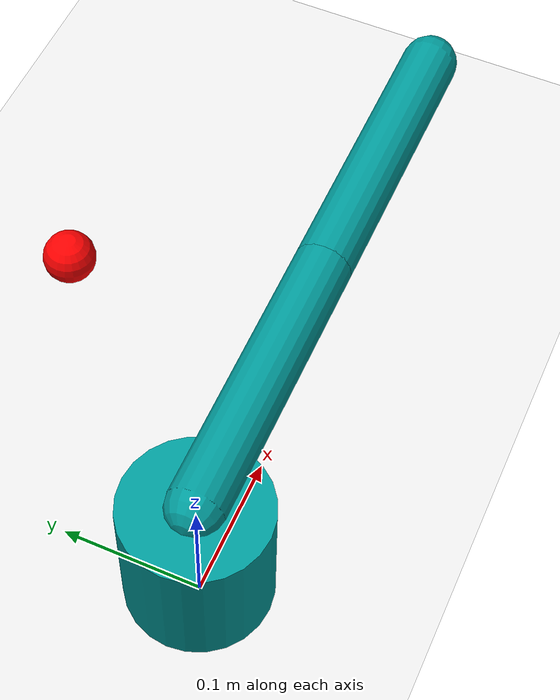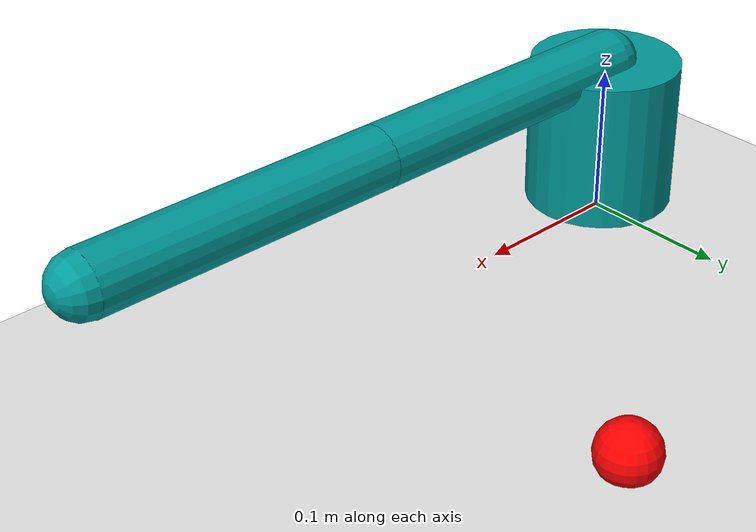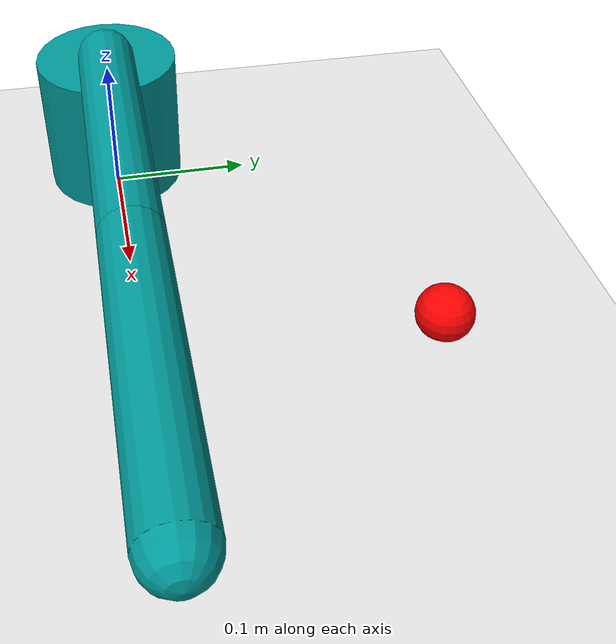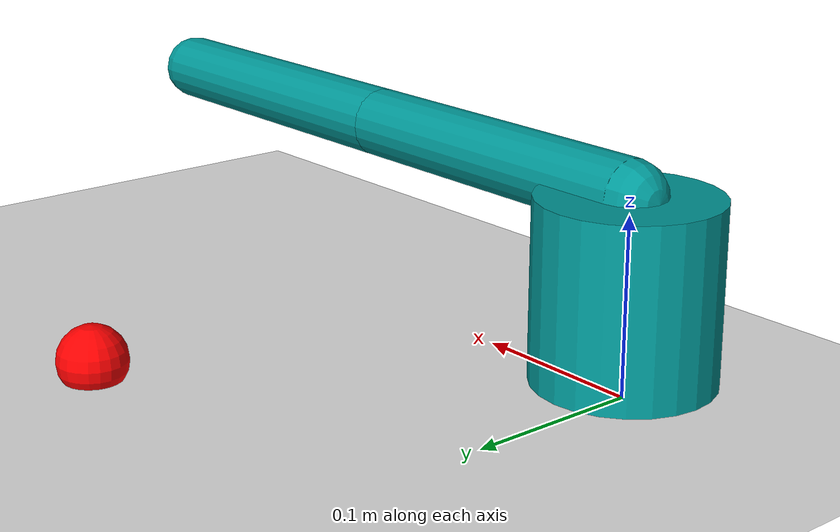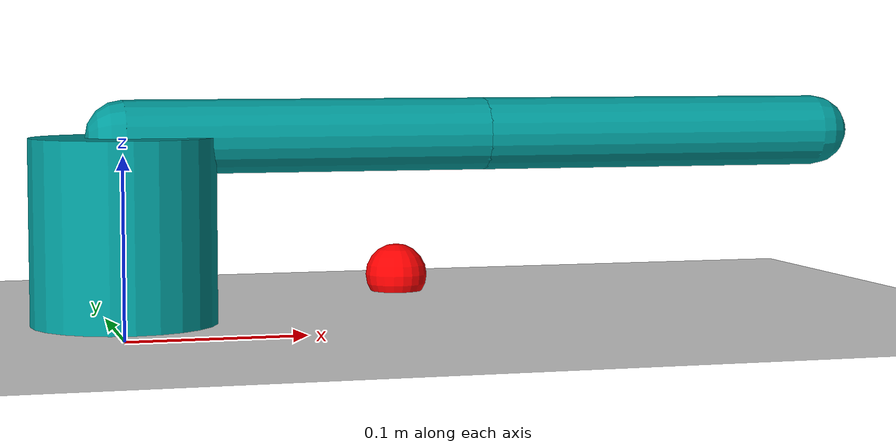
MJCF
<mujoco model="reacher">
  <compiler angle="radian" inertiafromgeom="true"/>

  <default>
    <joint armature="1" damping="1" limited="true"/>
    <geom contype="0" friction="1 0.1 0.1" rgba="0.7 0.7 0 1"/>
  </default>

  <option gravity="0 0 -9.81" integrator="RK4" timestep="0.01"/>

  <worldbody>
    <!-- Table -->
    <geom name="ground" type="plane" pos="0 0 0" size="1 1 0.1" rgba="0.9 0.9 0.9 1"/>

    <!-- Target -->
    <body name="target" pos="0.2 0.2 0.01">
      <geom name="target" type="sphere" size="0.02" rgba="1 0 0 1" contype="0"/>
    </body>

    <!-- Arm Base -->
    <body name="body0" pos="0 0 0.01">
      <geom name="link0" type="cylinder" fromto="0 0 0 0 0 0.1" size="0.05" rgba="0 0.6 0.6 1"/>

      <!-- Joint 1 -->
      <body name="body1" pos="0 0 0.1">
        <joint name="joint0" type="hinge" pos="0 0 0" axis="0 0 1" range="-3.14 3.14"/>
        <geom name="link1" type="capsule" fromto="0 0 0 0.2 0 0" size="0.02" rgba="0 0.6 0.6 1"/>

        <!-- Joint 2 -->
        <body name="body2" pos="0.2 0 0">
          <joint name="joint1" type="hinge" pos="0 0 0" axis="0 0 1" range="-3.14 3.14"/>
          <geom name="link2" type="capsule" fromto="0 0 0 0.2 0 0" size="0.02" rgba="0 0.6 0.6 1"/>

          <!-- End Effector -->
          <body name="fingertip" pos="0.2 0 0">
            <geom name="fingertip" type="sphere" size="0.01" rgba="0 0.6 0.6 1"/>
          </body>
        </body>
      </body>
    </body>
  </worldbody>

  <actuator>
    <motor joint="joint0" ctrllimited="true" ctrlrange="-1 1" gear="20"/>
    <motor joint="joint1" ctrllimited="true" ctrlrange="-1 1" gear="20"/>
  </actuator>
</mujoco>
